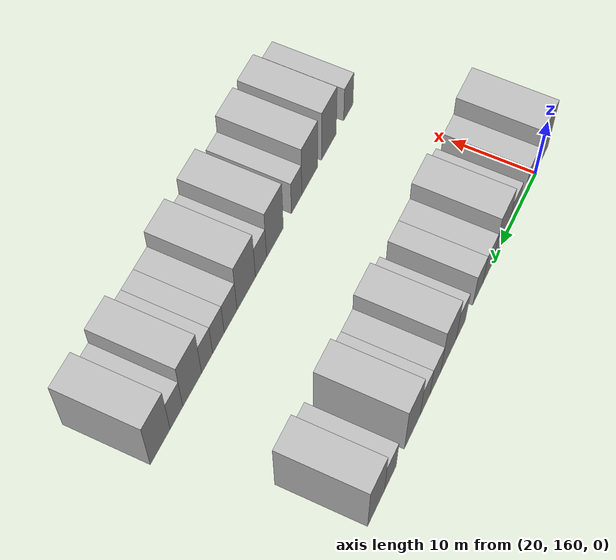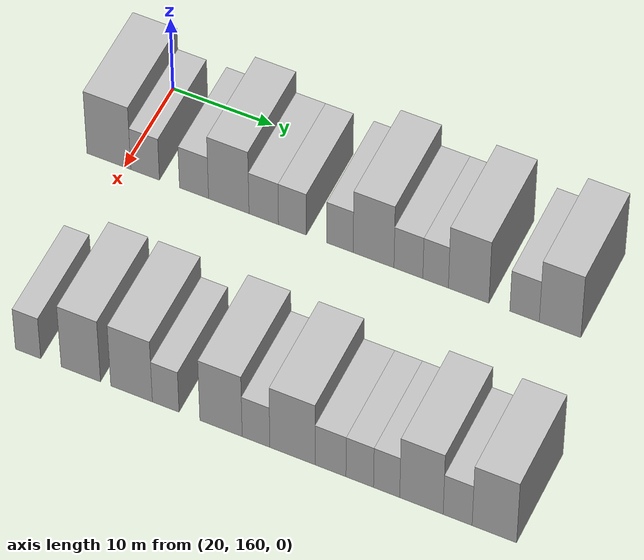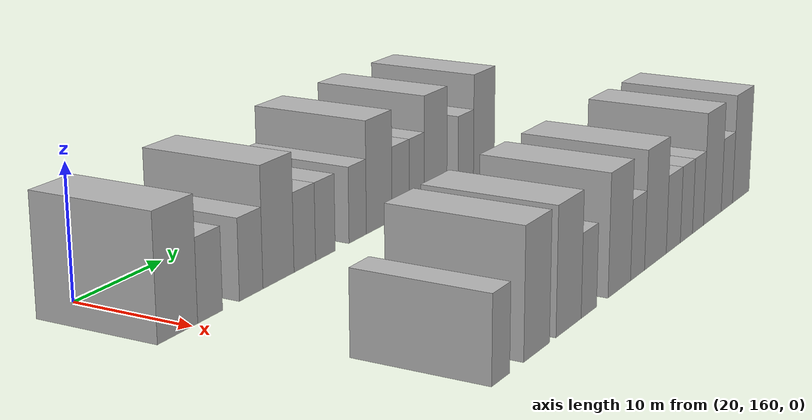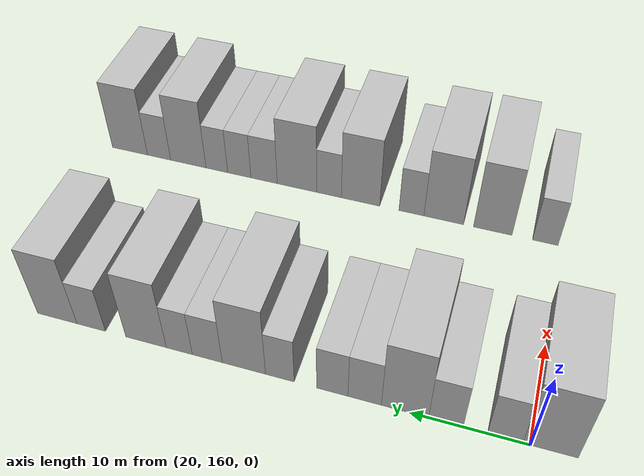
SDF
<sdf version="1.6">
 <world name="default">
  <model name="building_93">
   <static>1</static>
   <pose>25.0000 158.4090 0 0.000000 0.000000 0.000000</pose>
   <link name="link">
    <pose>0 0 4.50 0 0 0</pose>
    <collision name="collision"><geometry><box><size>10.0000 4.4125 9.0000</size></box></geometry></collision>
    <visual name="visual">
     <cast_shadows>0</cast_shadows>
     <geometry><box><size>10.0000 4.4125 9.0000</size></box></geometry>
     <material>
      <script>
       <uri>model://HANNAS_wall/materials/scripts</uri>
       <uri>model://HANNAS_wall/materials/textures</uri>
       <name>vrc/HANNAS_wall</name>
      </script>
     </material>
    </visual>
   </link>
  </model>
  <model name="building_94">
   <static>1</static>
   <pose>25.0000 162.0539 0 0.000000 0.000000 0.000000</pose>
   <link name="link">
    <pose>0 0 3.00 0 0 0</pose>
    <collision name="collision"><geometry><box><size>10.0000 2.8772 6.0000</size></box></geometry></collision>
    <visual name="visual">
     <cast_shadows>0</cast_shadows>
     <geometry><box><size>10.0000 2.8772 6.0000</size></box></geometry>
     <material>
      <script>
       <uri>model://HANNAS_wall/materials/scripts</uri>
       <uri>model://HANNAS_wall/materials/textures</uri>
       <name>vrc/HANNAS_wall</name>
      </script>
     </material>
    </visual>
   </link>
  </model>
  <model name="building_95">
   <static>1</static>
   <pose>25.0000 166.9425 0 0.000000 0.000000 0.000000</pose>
   <link name="link">
    <pose>0 0 3.00 0 0 0</pose>
    <collision name="collision"><geometry><box><size>10.0000 2.9001 6.0000</size></box></geometry></collision>
    <visual name="visual">
     <cast_shadows>0</cast_shadows>
     <geometry><box><size>10.0000 2.9001 6.0000</size></box></geometry>
     <material>
      <script>
       <uri>model://HANNAS_wall/materials/scripts</uri>
       <uri>model://HANNAS_wall/materials/textures</uri>
       <name>vrc/HANNAS_wall</name>
      </script>
     </material>
    </visual>
   </link>
  </model>
  <model name="building_96">
   <static>1</static>
   <pose>25.0000 170.4002 0 0.000000 0.000000 0.000000</pose>
   <link name="link">
    <pose>0 0 4.50 0 0 0</pose>
    <collision name="collision"><geometry><box><size>10.0000 4.0152 9.0000</size></box></geometry></collision>
    <visual name="visual">
     <cast_shadows>0</cast_shadows>
     <geometry><box><size>10.0000 4.0152 9.0000</size></box></geometry>
     <material>
      <script>
       <uri>model://HANNAS_wall/materials/scripts</uri>
       <uri>model://HANNAS_wall/materials/textures</uri>
       <name>vrc/HANNAS_wall</name>
      </script>
     </material>
    </visual>
   </link>
  </model>
  <model name="building_97">
   <static>1</static>
   <pose>25.0000 173.8634 0 0.000000 0.000000 0.000000</pose>
   <link name="link">
    <pose>0 0 3.00 0 0 0</pose>
    <collision name="collision"><geometry><box><size>10.0000 2.9112 6.0000</size></box></geometry></collision>
    <visual name="visual">
     <cast_shadows>0</cast_shadows>
     <geometry><box><size>10.0000 2.9112 6.0000</size></box></geometry>
     <material>
      <script>
       <uri>model://HANNAS_wall/materials/scripts</uri>
       <uri>model://HANNAS_wall/materials/textures</uri>
       <name>vrc/HANNAS_wall</name>
      </script>
     </material>
    </visual>
   </link>
  </model>
  <model name="building_98">
   <static>1</static>
   <pose>25.0000 176.6966 0 0.000000 0.000000 0.000000</pose>
   <link name="link">
    <pose>0 0 3.00 0 0 0</pose>
    <collision name="collision"><geometry><box><size>10.0000 2.7553 6.0000</size></box></geometry></collision>
    <visual name="visual">
     <cast_shadows>0</cast_shadows>
     <geometry><box><size>10.0000 2.7553 6.0000</size></box></geometry>
     <material>
      <script>
       <uri>model://HANNAS_wall/materials/scripts</uri>
       <uri>model://HANNAS_wall/materials/textures</uri>
       <name>vrc/HANNAS_wall</name>
      </script>
     </material>
    </visual>
   </link>
  </model>
  <model name="building_99">
   <static>1</static>
   <pose>25.0000 181.3711 0 0.000000 0.000000 0.000000</pose>
   <link name="link">
    <pose>0 0 3.00 0 0 0</pose>
    <collision name="collision"><geometry><box><size>10.0000 2.5936 6.0000</size></box></geometry></collision>
    <visual name="visual">
     <cast_shadows>0</cast_shadows>
     <geometry><box><size>10.0000 2.5936 6.0000</size></box></geometry>
     <material>
      <script>
       <uri>model://HANNAS_wall/materials/scripts</uri>
       <uri>model://HANNAS_wall/materials/textures</uri>
       <name>vrc/HANNAS_wall</name>
      </script>
     </material>
    </visual>
   </link>
  </model>
  <model name="building_100">
   <static>1</static>
   <pose>25.0000 184.6591 0 0.000000 0.000000 0.000000</pose>
   <link name="link">
    <pose>0 0 4.50 0 0 0</pose>
    <collision name="collision"><geometry><box><size>10.0000 3.9824 9.0000</size></box></geometry></collision>
    <visual name="visual">
     <cast_shadows>0</cast_shadows>
     <geometry><box><size>10.0000 3.9824 9.0000</size></box></geometry>
     <material>
      <script>
       <uri>model://HANNAS_wall/materials/scripts</uri>
       <uri>model://HANNAS_wall/materials/textures</uri>
       <name>vrc/HANNAS_wall</name>
      </script>
     </material>
    </visual>
   </link>
  </model>
  <model name="building_101">
   <static>1</static>
   <pose>25.0000 188.0536 0 0.000000 0.000000 0.000000</pose>
   <link name="link">
    <pose>0 0 3.00 0 0 0</pose>
    <collision name="collision"><geometry><box><size>10.0000 2.8066 6.0000</size></box></geometry></collision>
    <visual name="visual">
     <cast_shadows>0</cast_shadows>
     <geometry><box><size>10.0000 2.8066 6.0000</size></box></geometry>
     <material>
      <script>
       <uri>model://HANNAS_wall/materials/scripts</uri>
       <uri>model://HANNAS_wall/materials/textures</uri>
       <name>vrc/HANNAS_wall</name>
      </script>
     </material>
    </visual>
   </link>
  </model>
  <model name="building_102">
   <static>1</static>
   <pose>25.0000 190.6953 0 0.000000 0.000000 0.000000</pose>
   <link name="link">
    <pose>0 0 3.00 0 0 0</pose>
    <collision name="collision"><geometry><box><size>10.0000 2.4767 6.0000</size></box></geometry></collision>
    <visual name="visual">
     <cast_shadows>0</cast_shadows>
     <geometry><box><size>10.0000 2.4767 6.0000</size></box></geometry>
     <material>
      <script>
       <uri>model://HANNAS_wall/materials/scripts</uri>
       <uri>model://HANNAS_wall/materials/textures</uri>
       <name>vrc/HANNAS_wall</name>
      </script>
     </material>
    </visual>
   </link>
  </model>
  <model name="building_103">
   <static>1</static>
   <pose>25.0000 193.8942 0 0.000000 0.000000 0.000000</pose>
   <link name="link">
    <pose>0 0 4.50 0 0 0</pose>
    <collision name="collision"><geometry><box><size>10.0000 3.9211 9.0000</size></box></geometry></collision>
    <visual name="visual">
     <cast_shadows>0</cast_shadows>
     <geometry><box><size>10.0000 3.9211 9.0000</size></box></geometry>
     <material>
      <script>
       <uri>model://HANNAS_wall/materials/scripts</uri>
       <uri>model://HANNAS_wall/materials/textures</uri>
       <name>vrc/HANNAS_wall</name>
      </script>
     </material>
    </visual>
   </link>
  </model>
  <model name="building_104">
   <static>1</static>
   <pose>25.0000 199.2703 0 0.000000 0.000000 0.000000</pose>
   <link name="link">
    <pose>0 0 3.00 0 0 0</pose>
    <collision name="collision"><geometry><box><size>10.0000 2.8310 6.0000</size></box></geometry></collision>
    <visual name="visual">
     <cast_shadows>0</cast_shadows>
     <geometry><box><size>10.0000 2.8310 6.0000</size></box></geometry>
     <material>
      <script>
       <uri>model://HANNAS_wall/materials/scripts</uri>
       <uri>model://HANNAS_wall/materials/textures</uri>
       <name>vrc/HANNAS_wall</name>
      </script>
     </material>
    </visual>
   </link>
  </model>
  <model name="building_105">
   <static>1</static>
   <pose>25.0000 202.6778 0 0.000000 0.000000 0.000000</pose>
   <link name="link">
    <pose>0 0 4.50 0 0 0</pose>
    <collision name="collision"><geometry><box><size>10.0000 3.9841 9.0000</size></box></geometry></collision>
    <visual name="visual">
     <cast_shadows>0</cast_shadows>
     <geometry><box><size>10.0000 3.9841 9.0000</size></box></geometry>
     <material>
      <script>
       <uri>model://HANNAS_wall/materials/scripts</uri>
       <uri>model://HANNAS_wall/materials/textures</uri>
       <name>vrc/HANNAS_wall</name>
      </script>
     </material>
    </visual>
   </link>
  </model>
  <model name="building_190">
   <static>1</static>
   <pose>47.0000 161.4702 0 0.000000 0.000000 0.000000</pose>
   <link name="link">
    <pose>0 0 3.00 0 0 0</pose>
    <collision name="collision"><geometry><box><size>10.0000 2.4797 6.0000</size></box></geometry></collision>
    <visual name="visual">
     <cast_shadows>0</cast_shadows>
     <geometry><box><size>10.0000 2.4797 6.0000</size></box></geometry>
     <material>
      <script>
       <uri>model://HANNAS_wall/materials/scripts</uri>
       <uri>model://HANNAS_wall/materials/textures</uri>
       <name>vrc/HANNAS_wall</name>
      </script>
     </material>
    </visual>
   </link>
  </model>
  <model name="building_191">
   <static>1</static>
   <pose>47.0000 166.6292 0 0.000000 0.000000 0.000000</pose>
   <link name="link">
    <pose>0 0 4.50 0 0 0</pose>
    <collision name="collision"><geometry><box><size>10.0000 3.8381 9.0000</size></box></geometry></collision>
    <visual name="visual">
     <cast_shadows>0</cast_shadows>
     <geometry><box><size>10.0000 3.8381 9.0000</size></box></geometry>
     <material>
      <script>
       <uri>model://HANNAS_wall/materials/scripts</uri>
       <uri>model://HANNAS_wall/materials/textures</uri>
       <name>vrc/HANNAS_wall</name>
      </script>
     </material>
    </visual>
   </link>
  </model>
  <model name="building_192">
   <static>1</static>
   <pose>47.0000 171.5664 0 0.000000 0.000000 0.000000</pose>
   <link name="link">
    <pose>0 0 4.50 0 0 0</pose>
    <collision name="collision"><geometry><box><size>10.0000 4.0364 9.0000</size></box></geometry></collision>
    <visual name="visual">
     <cast_shadows>0</cast_shadows>
     <geometry><box><size>10.0000 4.0364 9.0000</size></box></geometry>
     <material>
      <script>
       <uri>model://HANNAS_wall/materials/scripts</uri>
       <uri>model://HANNAS_wall/materials/textures</uri>
       <name>vrc/HANNAS_wall</name>
      </script>
     </material>
    </visual>
   </link>
  </model>
  <model name="building_193">
   <static>1</static>
   <pose>47.0000 174.8742 0 0.000000 0.000000 0.000000</pose>
   <link name="link">
    <pose>0 0 3.00 0 0 0</pose>
    <collision name="collision"><geometry><box><size>10.0000 2.5793 6.0000</size></box></geometry></collision>
    <visual name="visual">
     <cast_shadows>0</cast_shadows>
     <geometry><box><size>10.0000 2.5793 6.0000</size></box></geometry>
     <material>
      <script>
       <uri>model://HANNAS_wall/materials/scripts</uri>
       <uri>model://HANNAS_wall/materials/textures</uri>
       <name>vrc/HANNAS_wall</name>
      </script>
     </material>
    </visual>
   </link>
  </model>
  <model name="building_194">
   <static>1</static>
   <pose>47.0000 180.1961 0 0.000000 0.000000 0.000000</pose>
   <link name="link">
    <pose>0 0 4.50 0 0 0</pose>
    <collision name="collision"><geometry><box><size>10.0000 4.0644 9.0000</size></box></geometry></collision>
    <visual name="visual">
     <cast_shadows>0</cast_shadows>
     <geometry><box><size>10.0000 4.0644 9.0000</size></box></geometry>
     <material>
      <script>
       <uri>model://HANNAS_wall/materials/scripts</uri>
       <uri>model://HANNAS_wall/materials/textures</uri>
       <name>vrc/HANNAS_wall</name>
      </script>
     </material>
    </visual>
   </link>
  </model>
  <model name="building_195">
   <static>1</static>
   <pose>47.0000 183.5521 0 0.000000 0.000000 0.000000</pose>
   <link name="link">
    <pose>0 0 3.00 0 0 0</pose>
    <collision name="collision"><geometry><box><size>10.0000 2.6477 6.0000</size></box></geometry></collision>
    <visual name="visual">
     <cast_shadows>0</cast_shadows>
     <geometry><box><size>10.0000 2.6477 6.0000</size></box></geometry>
     <material>
      <script>
       <uri>model://HANNAS_wall/materials/scripts</uri>
       <uri>model://HANNAS_wall/materials/textures</uri>
       <name>vrc/HANNAS_wall</name>
      </script>
     </material>
    </visual>
   </link>
  </model>
  <model name="building_196">
   <static>1</static>
   <pose>47.0000 187.0314 0 0.000000 0.000000 0.000000</pose>
   <link name="link">
    <pose>0 0 4.50 0 0 0</pose>
    <collision name="collision"><geometry><box><size>10.0000 4.3109 9.0000</size></box></geometry></collision>
    <visual name="visual">
     <cast_shadows>0</cast_shadows>
     <geometry><box><size>10.0000 4.3109 9.0000</size></box></geometry>
     <material>
      <script>
       <uri>model://HANNAS_wall/materials/scripts</uri>
       <uri>model://HANNAS_wall/materials/textures</uri>
       <name>vrc/HANNAS_wall</name>
      </script>
     </material>
    </visual>
   </link>
  </model>
  <model name="building_197">
   <static>1</static>
   <pose>47.0000 190.6474 0 0.000000 0.000000 0.000000</pose>
   <link name="link">
    <pose>0 0 3.00 0 0 0</pose>
    <collision name="collision"><geometry><box><size>10.0000 2.9210 6.0000</size></box></geometry></collision>
    <visual name="visual">
     <cast_shadows>0</cast_shadows>
     <geometry><box><size>10.0000 2.9210 6.0000</size></box></geometry>
     <material>
      <script>
       <uri>model://HANNAS_wall/materials/scripts</uri>
       <uri>model://HANNAS_wall/materials/textures</uri>
       <name>vrc/HANNAS_wall</name>
      </script>
     </material>
    </visual>
   </link>
  </model>
  <model name="building_198">
   <static>1</static>
   <pose>47.0000 193.4092 0 0.000000 0.000000 0.000000</pose>
   <link name="link">
    <pose>0 0 3.00 0 0 0</pose>
    <collision name="collision"><geometry><box><size>10.0000 2.6026 6.0000</size></box></geometry></collision>
    <visual name="visual">
     <cast_shadows>0</cast_shadows>
     <geometry><box><size>10.0000 2.6026 6.0000</size></box></geometry>
     <material>
      <script>
       <uri>model://HANNAS_wall/materials/scripts</uri>
       <uri>model://HANNAS_wall/materials/textures</uri>
       <name>vrc/HANNAS_wall</name>
      </script>
     </material>
    </visual>
   </link>
  </model>
  <model name="building_199">
   <static>1</static>
   <pose>47.0000 195.9416 0 0.000000 0.000000 0.000000</pose>
   <link name="link">
    <pose>0 0 3.00 0 0 0</pose>
    <collision name="collision"><geometry><box><size>10.0000 2.4621 6.0000</size></box></geometry></collision>
    <visual name="visual">
     <cast_shadows>0</cast_shadows>
     <geometry><box><size>10.0000 2.4621 6.0000</size></box></geometry>
     <material>
      <script>
       <uri>model://HANNAS_wall/materials/scripts</uri>
       <uri>model://HANNAS_wall/materials/textures</uri>
       <name>vrc/HANNAS_wall</name>
      </script>
     </material>
    </visual>
   </link>
  </model>
  <model name="building_200">
   <static>1</static>
   <pose>47.0000 199.2118 0 0.000000 0.000000 0.000000</pose>
   <link name="link">
    <pose>0 0 4.50 0 0 0</pose>
    <collision name="collision"><geometry><box><size>10.0000 4.0782 9.0000</size></box></geometry></collision>
    <visual name="visual">
     <cast_shadows>0</cast_shadows>
     <geometry><box><size>10.0000 4.0782 9.0000</size></box></geometry>
     <material>
      <script>
       <uri>model://HANNAS_wall/materials/scripts</uri>
       <uri>model://HANNAS_wall/materials/textures</uri>
       <name>vrc/HANNAS_wall</name>
      </script>
     </material>
    </visual>
   </link>
  </model>
  <model name="building_201">
   <static>1</static>
   <pose>47.0000 202.6022 0 0.000000 0.000000 0.000000</pose>
   <link name="link">
    <pose>0 0 3.00 0 0 0</pose>
    <collision name="collision"><geometry><box><size>10.0000 2.7027 6.0000</size></box></geometry></collision>
    <visual name="visual">
     <cast_shadows>0</cast_shadows>
     <geometry><box><size>10.0000 2.7027 6.0000</size></box></geometry>
     <material>
      <script>
       <uri>model://HANNAS_wall/materials/scripts</uri>
       <uri>model://HANNAS_wall/materials/textures</uri>
       <name>vrc/HANNAS_wall</name>
      </script>
     </material>
    </visual>
   </link>
  </model>
  <model name="building_202">
   <static>1</static>
   <pose>47.0000 206.0274 0 0.000000 0.000000 0.000000</pose>
   <link name="link">
    <pose>0 0 4.50 0 0 0</pose>
    <collision name="collision"><geometry><box><size>10.0000 4.1476 9.0000</size></box></geometry></collision>
    <visual name="visual">
     <cast_shadows>0</cast_shadows>
     <geometry><box><size>10.0000 4.1476 9.0000</size></box></geometry>
     <material>
      <script>
       <uri>model://HANNAS_wall/materials/scripts</uri>
       <uri>model://HANNAS_wall/materials/textures</uri>
       <name>vrc/HANNAS_wall</name>
      </script>
     </material>
    </visual>
   </link>
  </model>
 </world>
</sdf>
